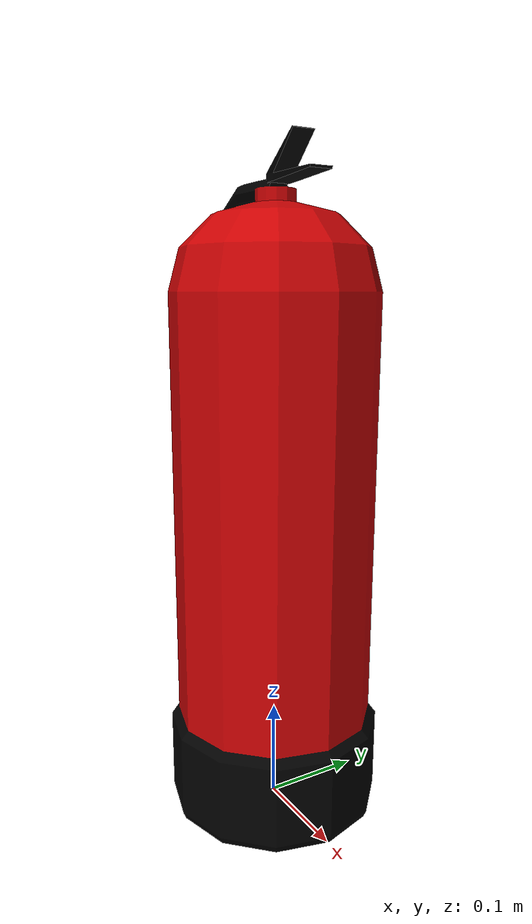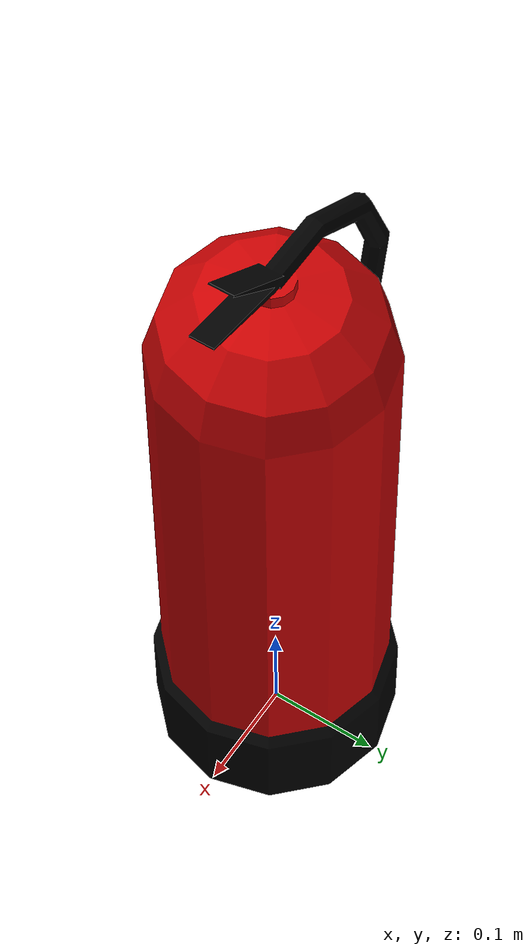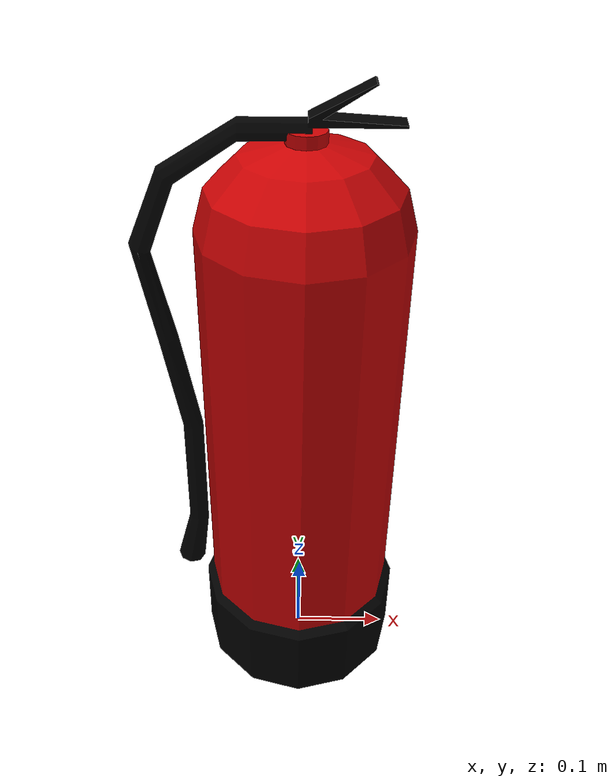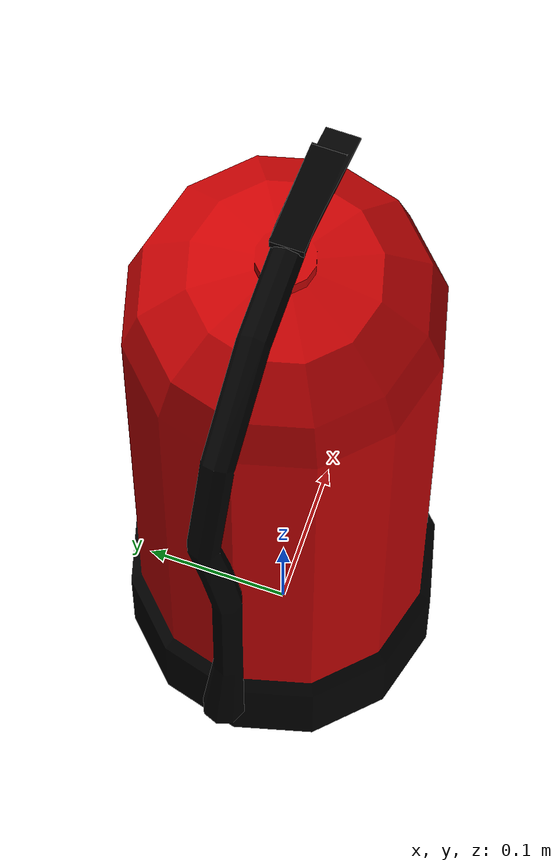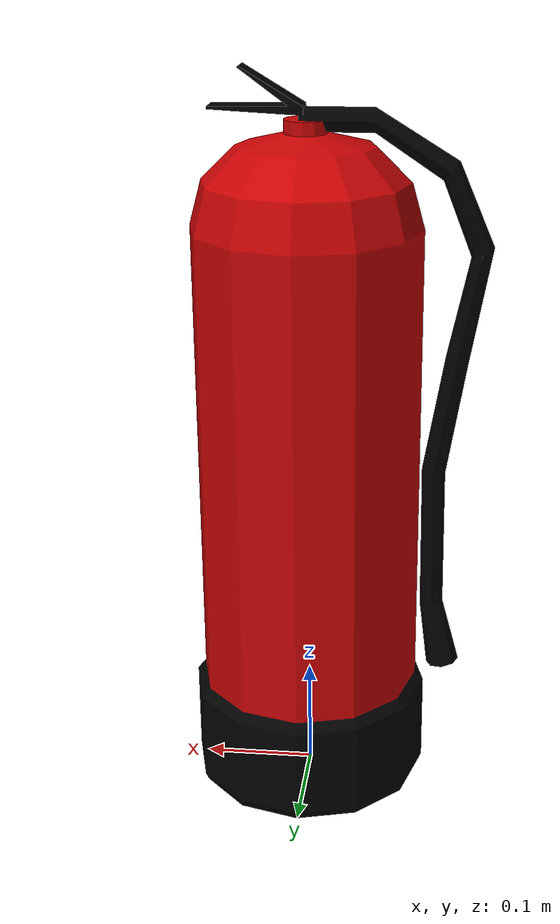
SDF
<?xml version='1.0' ?>
<sdf version='1.6'>
  <model name='Extintor'>
    <static>true</static>
    <link name='link'>
      <collision name='collision'>
        <geometry>
          <mesh>
            <uri>model://extintor/meshes/collision/collision.stl</uri>
          </mesh>
        </geometry>
      </collision>
      <visual name='visual'>
        <geometry>
          <mesh>
            <uri>model://extintor/meshes/visual/visual.dae</uri>
          </mesh>
        </geometry>
      </visual>
    </link>
  </model>
</sdf>
